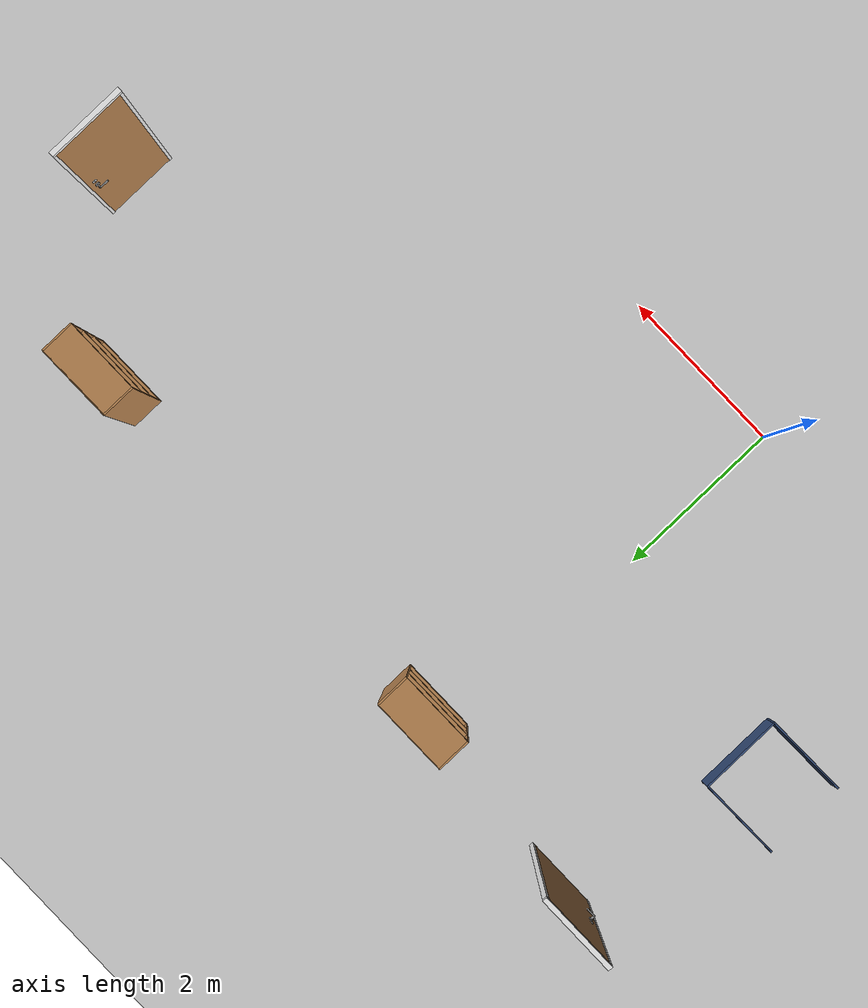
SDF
<sdf version="1.6">
 <world name="default">
  <model name="ground_plane">
   <static>1</static>
   <link name="link">
    <collision name="collision">
     <geometry><plane><normal>0 0 1</normal><size>100 100</size></plane></geometry>
     <surface><friction><ode><mu>100</mu><mu2>50</mu2></ode></friction></surface>
    </collision>
    <visual name="visual">
     <cast_shadows>0</cast_shadows>
     <geometry><plane><normal>0 0 1</normal><size>100 100</size></plane></geometry>
     <material>
      <script><uri>file://media/materials/scripts/gazebo.material</uri><name>Gazebo/Grey</name></script>
     </material>
    </visual>
   </link>
  </model>
  <model name="door_55_900_2090">
   <link name="link">
    <pose>0 0.45 0 0 -0 0</pose>
    <inertial>
     <mass>50</mass>
     <inertia><ixx>1</ixx><ixy>0</ixy><ixz>0</ixz><iyy>1</iyy><iyz>0</iyz><izz>1</izz></inertia>
    </inertial>
    <visual name="door">
     <pose>0 0 1.05 0 -0 0</pose>
     <geometry><box><size>0.055 0.83 2</size></box></geometry>
     <material>
      <script><uri>model://base_materials/wood/scripts/wood.material</uri><name>base_materials/wood</name></script>
     </material>
    </visual>
    <collision name="collision_door">
     <pose>0 0 1.05 0 -0 0</pose>
     <geometry><box><size>0.055 0.83 2</size></box></geometry>
    </collision>
    <visual name="right_frame">
     <pose>0 0.4325 1.025 0 -0 0</pose>
     <geometry><box><size>0.055 0.035 2.05</size></box></geometry>
     <material>
      <script><uri>model://base_materials/color/scripts</uri><name>hsr_color/white</name></script>
     </material>
    </visual>
    <collision name="collision_right_frame">
     <pose>0 0.4325 1.025 0 -0 0</pose>
     <geometry><box><size>0.055 0.035 2.05</size></box></geometry>
    </collision>
    <visual name="left_frame">
     <pose>0 -0.4325 1.025 0 -0 0</pose>
     <geometry><box><size>0.055 0.035 2.05</size></box></geometry>
     <material>
      <script><uri>model://base_materials/color/scripts</uri><name>hsr_color/white</name></script>
     </material>
    </visual>
    <collision name="collision_left_frame">
     <pose>0 -0.4325 1.025 0 -0 0</pose>
     <geometry><box><size>0.055 0.035 2.05</size></box></geometry>
    </collision>
    <visual name="top_frame">
     <pose>0 0 2.07 0 -0 0</pose>
     <geometry><box><size>0.055 0.9 0.04</size></box></geometry>
     <material>
      <script><uri>model://base_materials/color/scripts</uri><name>hsr_color/white</name></script>
     </material>
    </visual>
    <collision name="collision_top_frame">
     <pose>0 0 2.07 0 -0 0</pose>
     <geometry><box><size>0.055 0.9 0.04</size></box></geometry>
    </collision>
    <visual name="handle_front">
     <pose>0.0775 0.285 0.93 1.5708 -0 0</pose>
     <geometry><cylinder><radius>0.01</radius><length>0.1</length></cylinder></geometry>
     <material>
      <script><uri>model://base_materials/color/scripts</uri><name>hsr_color/grey</name></script>
     </material>
    </visual>
    <collision name="collision_handle_front">
     <pose>0.0775 0.285 0.93 1.5708 -0 0</pose>
     <geometry><cylinder><radius>0.01</radius><length>0.1</length></cylinder></geometry>
    </collision>
    <visual name="handle_back">
     <pose>-0.0775 0.285 0.93 1.5708 -0 0</pose>
     <geometry><cylinder><radius>0.01</radius><length>0.1</length></cylinder></geometry>
     <material>
      <script><uri>model://base_materials/color/scripts</uri><name>hsr_color/grey</name></script>
     </material>
    </visual>
    <collision name="collision_handle_back">
     <pose>-0.0775 0.285 0.93 1.5708 -0 0</pose>
     <geometry><cylinder><radius>0.01</radius><length>0.1</length></cylinder></geometry>
    </collision>
    <visual name="handle_center1">
     <pose>0 0.335 0.93 3.14159 1.57079 3.14159</pose>
     <geometry><cylinder><radius>0.01</radius><length>0.155</length></cylinder></geometry>
     <material>
      <script><uri>model://base_materials/color/scripts</uri><name>hsr_color/grey</name></script>
     </material>
    </visual>
    <collision name="collision_center1">
     <pose>0 0.335 0.93 3.14159 1.57079 3.14159</pose>
     <geometry><cylinder><radius>0.01</radius><length>0.155</length></cylinder></geometry>
    </collision>
    <visual name="handle_center2">
     <pose>0 0.335 0.93 3.14159 1.57079 3.14159</pose>
     <geometry><cylinder><radius>0.025</radius><length>0.075</length></cylinder></geometry>
     <material>
      <script><uri>model://base_materials/color/scripts</uri><name>hsr_color/grey</name></script>
     </material>
    </visual>
    <collision name="collision_center1">
     <pose>0 0.335 0.93 3.14159 1.57079 3.14159</pose>
     <geometry><cylinder><radius>0.025</radius><length>0.075</length></cylinder></geometry>
    </collision>
    <visual name="handle_front_right_corner">
     <pose>0.0775 0.335 0.93 0 -0 0</pose>
     <geometry><sphere><radius>0.01</radius></sphere></geometry>
     <material>
      <script><uri>model://base_materials/color/scripts</uri><name>hsr_color/grey</name></script>
     </material>
    </visual>
    <collision name="collision_handle_front_right_corner">
     <pose>0.0775 0.335 0.93 0 -0 0</pose>
     <geometry><sphere><radius>0.01</radius></sphere></geometry>
    </collision>
    <visual name="handle_front_left_corner">
     <pose>0.0775 0.235 0.93 0 -0 0</pose>
     <geometry><sphere><radius>0.01</radius></sphere></geometry>
     <material>
      <script><uri>model://base_materials/color/scripts</uri><name>hsr_color/grey</name></script>
     </material>
    </visual>
    <collision name="collision_handle_front_left_corner">
     <pose>0.0775 0.235 0.93 0 -0 0</pose>
     <geometry><sphere><radius>0.01</radius></sphere></geometry>
    </collision>
    <visual name="handle_back_right_corner">
     <pose>-0.0775 0.335 0.93 0 -0 0</pose>
     <geometry><sphere><radius>0.01</radius></sphere></geometry>
     <material>
      <script><uri>model://base_materials/color/scripts</uri><name>hsr_color/grey</name></script>
     </material>
    </visual>
    <collision name="collision_handle_back_right_corner">
     <pose>-0.0775 0.335 0.93 0 -0 0</pose>
     <geometry><sphere><radius>0.01</radius></sphere></geometry>
    </collision>
    <visual name="handle_back_left_corner">
     <pose>-0.0775 0.235 0.93 0 -0 0</pose>
     <geometry><sphere><radius>0.01</radius></sphere></geometry>
     <material>
      <script><uri>model://base_materials/color/scripts</uri><name>hsr_color/white</name></script>
     </material>
    </visual>
    <collision name="collision_handle_back_left_corner">
     <pose>-0.0775 0.235 0.93 0 -0 0</pose>
     <geometry><sphere><radius>0.01</radius></sphere></geometry>
    </collision>
    <visual name="handle_lock1">
     <pose>0 0.335 1.03 0 -0 0</pose>
     <geometry><box><size>0.075 0.005 0.04</size></box></geometry>
     <material>
      <script><uri>model://base_materials/color/scripts</uri><name>hsr_color/white</name></script>
     </material>
    </visual>
    <collision name="collision_handle_lock1">
     <pose>0 0.335 1.03 0 -0 0</pose>
     <geometry><box><size>0.075 0.005 0.04</size></box></geometry>
    </collision>
    <visual name="handle_lock2">
     <pose>0 0.335 1.03 3.14159 1.57079 3.14159</pose>
     <geometry><cylinder><radius>0.025</radius><length>0.065</length></cylinder></geometry>
     <material>
      <script><uri>model://base_materials/color/scripts</uri><name>hsr_color/white</name></script>
     </material>
    </visual>
    <collision name="collision_handle_lock1">
     <pose>0 0.335 1.03 3.14159 1.57079 3.14159</pose>
     <geometry><cylinder><radius>0.025</radius><length>0.065</length></cylinder></geometry>
    </collision>
    <velocity_decay><linear>0</linear><angular>0</angular></velocity_decay>
   </link>
   <static>1</static>
   <pose>6.79644 2.61344 -0.041685 0 -0 0</pose>
  </model>
  <model name="door_55_900_2090_0">
   <link name="link">
    <pose>0 0.45 0 0 -0 0</pose>
    <inertial>
     <mass>50</mass>
     <inertia><ixx>1</ixx><ixy>0</ixy><ixz>0</ixz><iyy>1</iyy><iyz>0</iyz><izz>1</izz></inertia>
    </inertial>
    <visual name="door">
     <pose>0 0 1.05 0 -0 0</pose>
     <geometry><box><size>0.055 0.83 2</size></box></geometry>
     <material>
      <script><uri>model://base_materials/wood/scripts/wood.material</uri><name>base_materials/wood</name></script>
     </material>
    </visual>
    <collision name="collision_door">
     <pose>0 0 1.05 0 -0 0</pose>
     <geometry><box><size>0.055 0.83 2</size></box></geometry>
    </collision>
    <visual name="right_frame">
     <pose>0 0.4325 1.025 0 -0 0</pose>
     <geometry><box><size>0.055 0.035 2.05</size></box></geometry>
     <material>
      <script><uri>model://base_materials/color/scripts</uri><name>hsr_color/white</name></script>
     </material>
    </visual>
    <collision name="collision_right_frame">
     <pose>0 0.4325 1.025 0 -0 0</pose>
     <geometry><box><size>0.055 0.035 2.05</size></box></geometry>
    </collision>
    <visual name="left_frame">
     <pose>0 -0.4325 1.025 0 -0 0</pose>
     <geometry><box><size>0.055 0.035 2.05</size></box></geometry>
     <material>
      <script><uri>model://base_materials/color/scripts</uri><name>hsr_color/white</name></script>
     </material>
    </visual>
    <collision name="collision_left_frame">
     <pose>0 -0.4325 1.025 0 -0 0</pose>
     <geometry><box><size>0.055 0.035 2.05</size></box></geometry>
    </collision>
    <visual name="top_frame">
     <pose>0 0 2.07 0 -0 0</pose>
     <geometry><box><size>0.055 0.9 0.04</size></box></geometry>
     <material>
      <script><uri>model://base_materials/color/scripts</uri><name>hsr_color/white</name></script>
     </material>
    </visual>
    <collision name="collision_top_frame">
     <pose>0 0 2.07 0 -0 0</pose>
     <geometry><box><size>0.055 0.9 0.04</size></box></geometry>
    </collision>
    <visual name="handle_front">
     <pose>0.0775 0.285 0.93 1.5708 -0 0</pose>
     <geometry><cylinder><radius>0.01</radius><length>0.1</length></cylinder></geometry>
     <material>
      <script><uri>model://base_materials/color/scripts</uri><name>hsr_color/grey</name></script>
     </material>
    </visual>
    <collision name="collision_handle_front">
     <pose>0.0775 0.285 0.93 1.5708 -0 0</pose>
     <geometry><cylinder><radius>0.01</radius><length>0.1</length></cylinder></geometry>
    </collision>
    <visual name="handle_back">
     <pose>-0.0775 0.285 0.93 1.5708 -0 0</pose>
     <geometry><cylinder><radius>0.01</radius><length>0.1</length></cylinder></geometry>
     <material>
      <script><uri>model://base_materials/color/scripts</uri><name>hsr_color/grey</name></script>
     </material>
    </visual>
    <collision name="collision_handle_back">
     <pose>-0.0775 0.285 0.93 1.5708 -0 0</pose>
     <geometry><cylinder><radius>0.01</radius><length>0.1</length></cylinder></geometry>
    </collision>
    <visual name="handle_center1">
     <pose>0 0.335 0.93 3.14159 1.57079 3.14159</pose>
     <geometry><cylinder><radius>0.01</radius><length>0.155</length></cylinder></geometry>
     <material>
      <script><uri>model://base_materials/color/scripts</uri><name>hsr_color/grey</name></script>
     </material>
    </visual>
    <collision name="collision_center1">
     <pose>0 0.335 0.93 3.14159 1.57079 3.14159</pose>
     <geometry><cylinder><radius>0.01</radius><length>0.155</length></cylinder></geometry>
    </collision>
    <visual name="handle_center2">
     <pose>0 0.335 0.93 3.14159 1.57079 3.14159</pose>
     <geometry><cylinder><radius>0.025</radius><length>0.075</length></cylinder></geometry>
     <material>
      <script><uri>model://base_materials/color/scripts</uri><name>hsr_color/grey</name></script>
     </material>
    </visual>
    <collision name="collision_center1">
     <pose>0 0.335 0.93 3.14159 1.57079 3.14159</pose>
     <geometry><cylinder><radius>0.025</radius><length>0.075</length></cylinder></geometry>
    </collision>
    <visual name="handle_front_right_corner">
     <pose>0.0775 0.335 0.93 0 -0 0</pose>
     <geometry><sphere><radius>0.01</radius></sphere></geometry>
     <material>
      <script><uri>model://base_materials/color/scripts</uri><name>hsr_color/grey</name></script>
     </material>
    </visual>
    <collision name="collision_handle_front_right_corner">
     <pose>0.0775 0.335 0.93 0 -0 0</pose>
     <geometry><sphere><radius>0.01</radius></sphere></geometry>
    </collision>
    <visual name="handle_front_left_corner">
     <pose>0.0775 0.235 0.93 0 -0 0</pose>
     <geometry><sphere><radius>0.01</radius></sphere></geometry>
     <material>
      <script><uri>model://base_materials/color/scripts</uri><name>hsr_color/grey</name></script>
     </material>
    </visual>
    <collision name="collision_handle_front_left_corner">
     <pose>0.0775 0.235 0.93 0 -0 0</pose>
     <geometry><sphere><radius>0.01</radius></sphere></geometry>
    </collision>
    <visual name="handle_back_right_corner">
     <pose>-0.0775 0.335 0.93 0 -0 0</pose>
     <geometry><sphere><radius>0.01</radius></sphere></geometry>
     <material>
      <script><uri>model://base_materials/color/scripts</uri><name>hsr_color/grey</name></script>
     </material>
    </visual>
    <collision name="collision_handle_back_right_corner">
     <pose>-0.0775 0.335 0.93 0 -0 0</pose>
     <geometry><sphere><radius>0.01</radius></sphere></geometry>
    </collision>
    <visual name="handle_back_left_corner">
     <pose>-0.0775 0.235 0.93 0 -0 0</pose>
     <geometry><sphere><radius>0.01</radius></sphere></geometry>
     <material>
      <script><uri>model://base_materials/color/scripts</uri><name>hsr_color/white</name></script>
     </material>
    </visual>
    <collision name="collision_handle_back_left_corner">
     <pose>-0.0775 0.235 0.93 0 -0 0</pose>
     <geometry><sphere><radius>0.01</radius></sphere></geometry>
    </collision>
    <visual name="handle_lock1">
     <pose>0 0.335 1.03 0 -0 0</pose>
     <geometry><box><size>0.075 0.005 0.04</size></box></geometry>
     <material>
      <script><uri>model://base_materials/color/scripts</uri><name>hsr_color/white</name></script>
     </material>
    </visual>
    <collision name="collision_handle_lock1">
     <pose>0 0.335 1.03 0 -0 0</pose>
     <geometry><box><size>0.075 0.005 0.04</size></box></geometry>
    </collision>
    <visual name="handle_lock2">
     <pose>0 0.335 1.03 3.14159 1.57079 3.14159</pose>
     <geometry><cylinder><radius>0.025</radius><length>0.065</length></cylinder></geometry>
     <material>
      <script><uri>model://base_materials/color/scripts</uri><name>hsr_color/white</name></script>
     </material>
    </visual>
    <collision name="collision_handle_lock1">
     <pose>0 0.335 1.03 3.14159 1.57079 3.14159</pose>
     <geometry><cylinder><radius>0.025</radius><length>0.065</length></cylinder></geometry>
    </collision>
    <velocity_decay><linear>0</linear><angular>0</angular></velocity_decay>
   </link>
   <static>1</static>
   <pose>-1.48446 4.97899 -0.030885 0 -0 1.56732</pose>
  </model>
  <model name="bookshelf">
   <static>1</static>
   <link name="link">
    <inertial><mass>1</mass></inertial>
    <collision name="back">
     <pose>0 0.005 0.6 0 -0 0</pose>
     <geometry><box><size>0.9 0.01 1.2</size></box></geometry>
    </collision>
    <visual name="visual1">
     <pose>0 0.005 0.6 0 -0 0</pose>
     <geometry><box><size>0.9 0.01 1.2</size></box></geometry>
     <material>
      <script><uri>file://media/materials/scripts/gazebo.material</uri><name>Gazebo/Wood</name></script>
     </material>
    </visual>
    <collision name="left_side">
     <pose>0.45 -0.195 0.6 0 -0 0</pose>
     <geometry><box><size>0.02 0.4 1.2</size></box></geometry>
    </collision>
    <visual name="visual2">
     <pose>0.45 -0.195 0.6 0 -0 0</pose>
     <geometry><box><size>0.02 0.4 1.2</size></box></geometry>
     <material>
      <script><uri>file://media/materials/scripts/gazebo.material</uri><name>Gazebo/Wood</name></script>
     </material>
    </visual>
    <collision name="right_side">
     <pose>-0.45 -0.195 0.6 0 -0 0</pose>
     <geometry><box><size>0.02 0.4 1.2</size></box></geometry>
    </collision>
    <visual name="visual3">
     <pose>-0.45 -0.195 0.6 0 -0 0</pose>
     <geometry><box><size>0.02 0.4 1.2</size></box></geometry>
     <material>
      <script><uri>file://media/materials/scripts/gazebo.material</uri><name>Gazebo/Wood</name></script>
     </material>
    </visual>
    <collision name="bottom">
     <pose>0 -0.195 0.03 0 -0 0</pose>
     <geometry><box><size>0.88 0.4 0.06</size></box></geometry>
    </collision>
    <visual name="visual4">
     <pose>0 -0.195 0.03 0 -0 0</pose>
     <geometry><box><size>0.88 0.4 0.06</size></box></geometry>
     <material>
      <script><uri>file://media/materials/scripts/gazebo.material</uri><name>Gazebo/Wood</name></script>
     </material>
    </visual>
    <collision name="top">
     <pose>0 -0.195 1.19 0 -0 0</pose>
     <geometry><box><size>0.88 0.4 0.02</size></box></geometry>
    </collision>
    <visual name="visual5">
     <pose>0 -0.195 1.19 0 -0 0</pose>
     <geometry><box><size>0.88 0.4 0.02</size></box></geometry>
     <material>
      <script><uri>file://media/materials/scripts/gazebo.material</uri><name>Gazebo/Wood</name></script>
     </material>
    </visual>
    <collision name="low_shelf">
     <pose>0 -0.195 0.43 0 -0 0</pose>
     <geometry><box><size>0.88 0.4 0.02</size></box></geometry>
    </collision>
    <visual name="visual6">
     <pose>0 -0.195 0.43 0 -0 0</pose>
     <geometry><box><size>0.88 0.4 0.02</size></box></geometry>
     <material>
      <script><uri>file://media/materials/scripts/gazebo.material</uri><name>Gazebo/Wood</name></script>
     </material>
    </visual>
    <collision name="high_shelf">
     <pose>0 -0.195 0.8 0 -0 0</pose>
     <geometry><box><size>0.88 0.4 0.02</size></box></geometry>
    </collision>
    <visual name="visual7">
     <pose>0 -0.195 0.8 0 -0 0</pose>
     <geometry><box><size>0.88 0.4 0.02</size></box></geometry>
     <material>
      <script><uri>file://media/materials/scripts/gazebo.material</uri><name>Gazebo/Wood</name></script>
     </material>
    </visual>
   </link>
   <pose>0.419292 4.96703 0 0 -0 0</pose>
  </model>
  <model name="bookshelf_clone">
   <static>1</static>
   <link name="link">
    <inertial><mass>1</mass></inertial>
    <collision name="back">
     <pose>0 0.005 0.6 0 -0 0</pose>
     <geometry><box><size>0.9 0.01 1.2</size></box></geometry>
    </collision>
    <visual name="visual1">
     <pose>0 0.005 0.6 0 -0 0</pose>
     <geometry><box><size>0.9 0.01 1.2</size></box></geometry>
     <material>
      <script><uri>file://media/materials/scripts/gazebo.material</uri><name>Gazebo/Wood</name></script>
     </material>
    </visual>
    <collision name="left_side">
     <pose>0.45 -0.195 0.6 0 -0 0</pose>
     <geometry><box><size>0.02 0.4 1.2</size></box></geometry>
    </collision>
    <visual name="visual2">
     <pose>0.45 -0.195 0.6 0 -0 0</pose>
     <geometry><box><size>0.02 0.4 1.2</size></box></geometry>
     <material>
      <script><uri>file://media/materials/scripts/gazebo.material</uri><name>Gazebo/Wood</name></script>
     </material>
    </visual>
    <collision name="right_side">
     <pose>-0.45 -0.195 0.6 0 -0 0</pose>
     <geometry><box><size>0.02 0.4 1.2</size></box></geometry>
    </collision>
    <visual name="visual3">
     <pose>-0.45 -0.195 0.6 0 -0 0</pose>
     <geometry><box><size>0.02 0.4 1.2</size></box></geometry>
     <material>
      <script><uri>file://media/materials/scripts/gazebo.material</uri><name>Gazebo/Wood</name></script>
     </material>
    </visual>
    <collision name="bottom">
     <pose>0 -0.195 0.03 0 -0 0</pose>
     <geometry><box><size>0.88 0.4 0.06</size></box></geometry>
    </collision>
    <visual name="visual4">
     <pose>0 -0.195 0.03 0 -0 0</pose>
     <geometry><box><size>0.88 0.4 0.06</size></box></geometry>
     <material>
      <script><uri>file://media/materials/scripts/gazebo.material</uri><name>Gazebo/Wood</name></script>
     </material>
    </visual>
    <collision name="top">
     <pose>0 -0.195 1.19 0 -0 0</pose>
     <geometry><box><size>0.88 0.4 0.02</size></box></geometry>
    </collision>
    <visual name="visual5">
     <pose>0 -0.195 1.19 0 -0 0</pose>
     <geometry><box><size>0.88 0.4 0.02</size></box></geometry>
     <material>
      <script><uri>file://media/materials/scripts/gazebo.material</uri><name>Gazebo/Wood</name></script>
     </material>
    </visual>
    <collision name="low_shelf">
     <pose>0 -0.195 0.43 0 -0 0</pose>
     <geometry><box><size>0.88 0.4 0.02</size></box></geometry>
    </collision>
    <visual name="visual6">
     <pose>0 -0.195 0.43 0 -0 0</pose>
     <geometry><box><size>0.88 0.4 0.02</size></box></geometry>
     <material>
      <script><uri>file://media/materials/scripts/gazebo.material</uri><name>Gazebo/Wood</name></script>
     </material>
    </visual>
    <collision name="high_shelf">
     <pose>0 -0.195 0.8 0 -0 0</pose>
     <geometry><box><size>0.88 0.4 0.02</size></box></geometry>
    </collision>
    <visual name="visual7">
     <pose>0 -0.195 0.8 0 -0 0</pose>
     <geometry><box><size>0.88 0.4 0.02</size></box></geometry>
     <material>
      <script><uri>file://media/materials/scripts/gazebo.material</uri><name>Gazebo/Wood</name></script>
     </material>
    </visual>
   </link>
   <pose>5.35168 4.95429 0 0 -0 0</pose>
  </model>
  <model name="low_wall">
   <link name="link">
    <inertial>
     <mass>50</mass>
     <inertia><ixx>1</ixx><ixy>0</ixy><ixz>0</ixz><iyy>1</iyy><iyz>0</iyz><izz>1</izz></inertia>
    </inertial>
    <visual name="wall">
     <pose>0 0 0.15 0 -0 0</pose>
     <geometry><box><size>0.02 1 0.3</size></box></geometry>
     <material>
      <ambient>0.392 0.584 0.929 1</ambient>
      <diffuse>0.196 0.292 0.4645 1</diffuse>
      <specular>0 0 0 1</specular>
     </material>
    </visual>
    <collision name="collision_wall">
     <pose>0 0 0.15 0 -0 0</pose>
     <geometry><box><size>0.02 1 0.3</size></box></geometry>
    </collision>
    <velocity_decay><linear>0</linear><angular>0</angular></velocity_decay>
   </link>
   <static>1</static>
   <pose>-2.29067 2.63547 0 0 -0 0</pose>
  </model>
  <model name="low_wall_0">
   <link name="link">
    <inertial>
     <mass>50</mass>
     <inertia><ixx>1</ixx><ixy>0</ixy><ixz>0</ixz><iyy>1</iyy><iyz>0</iyz><izz>1</izz></inertia>
    </inertial>
    <visual name="wall">
     <pose>0 0 0.15 0 -0 0</pose>
     <geometry><box><size>0.02 1 0.3</size></box></geometry>
     <material>
      <ambient>0.392 0.584 0.929 1</ambient>
      <diffuse>0.196 0.292 0.4645 1</diffuse>
      <specular>0 0 0 1</specular>
     </material>
    </visual>
    <collision name="collision_wall">
     <pose>0 0 0.15 0 -0 0</pose>
     <geometry><box><size>0.02 1 0.3</size></box></geometry>
    </collision>
    <velocity_decay><linear>0</linear><angular>0</angular></velocity_decay>
   </link>
   <static>1</static>
   <pose>-2.78049 2.12275 0 0 0 -1.56043</pose>
  </model>
  <model name="low_wall_0_clone">
   <link name="link">
    <inertial>
     <mass>50</mass>
     <inertia><ixx>1</ixx><ixy>0</ixy><ixz>0</ixz><iyy>1</iyy><iyz>0</iyz><izz>1</izz></inertia>
    </inertial>
    <visual name="wall">
     <pose>0 0 0.15 0 -0 0</pose>
     <geometry><box><size>0.02 1 0.3</size></box></geometry>
     <material>
      <ambient>0.392 0.584 0.929 1</ambient>
      <diffuse>0.196 0.292 0.4645 1</diffuse>
      <specular>0 0 0 1</specular>
     </material>
    </visual>
    <collision name="collision_wall">
     <pose>0 0 0.15 0 -0 0</pose>
     <geometry><box><size>0.02 1 0.3</size></box></geometry>
    </collision>
    <velocity_decay><linear>0</linear><angular>0</angular></velocity_decay>
   </link>
   <static>1</static>
   <pose>-2.78086 3.11946 0 0 0 -1.56043</pose>
  </model>
 </world>
</sdf>
